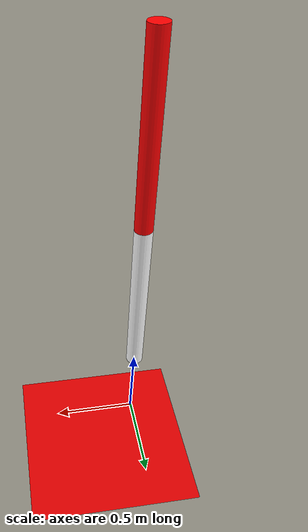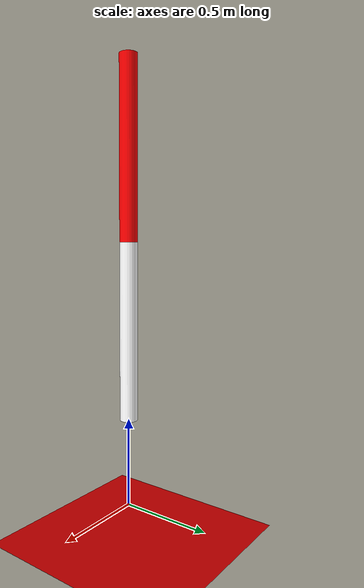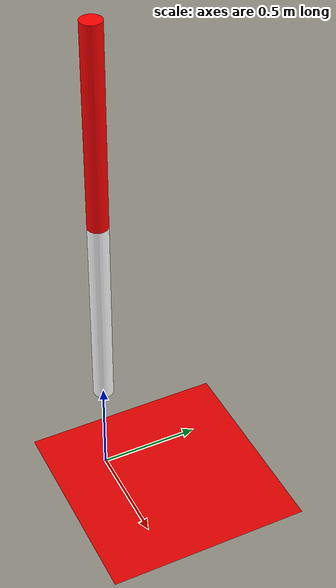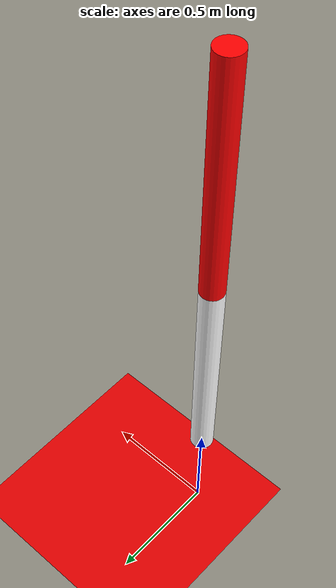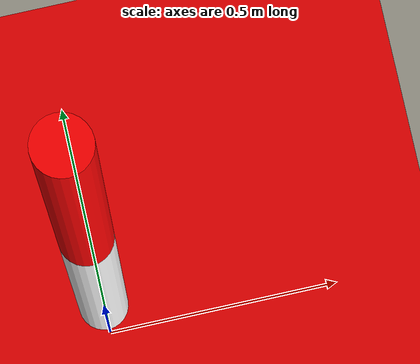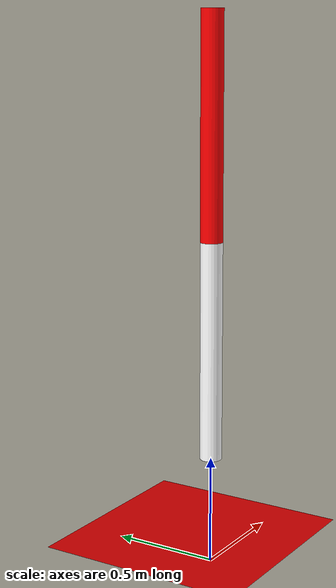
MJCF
<mujoco>
    <!-- min distance from root to endfactor is 1.766, max is 2 -->
    <option timestep="0.001">
		<flag gravity="disable"/>
	</option>
    <size nuserdata="3"/>
   <worldbody>
      <light diffuse=".5 .5 .5" pos="0 0 3" dir="0 0 -1"/>
      <geom type="plane" size="1 1 0.1" rgba=".9 0 0 1"/>

      <body pos="0 0 1.5" euler="0 0 0">
         <joint name="joint0" type="hinge" axis="0 -1 0" pos="0 0 1" damping="0"/>
         <geom name="link0" type="cylinder" pos="0 0 0.5" size="0.05 .5" rgba="1 0 0 1" mass="1"/>
         <body pos="0 0 -1" euler="0 0 0">
            <joint name="joint1" type="hinge" axis="0 -1 0" pos="0 0 1" damping="0"/>
            <geom name="link1" pos="0 0 0.5" type="cylinder" size="0.05 .5" rgba="1 1 1 1" mass="1"/>
         </body>
      </body>
   </worldbody>
</mujoco>
